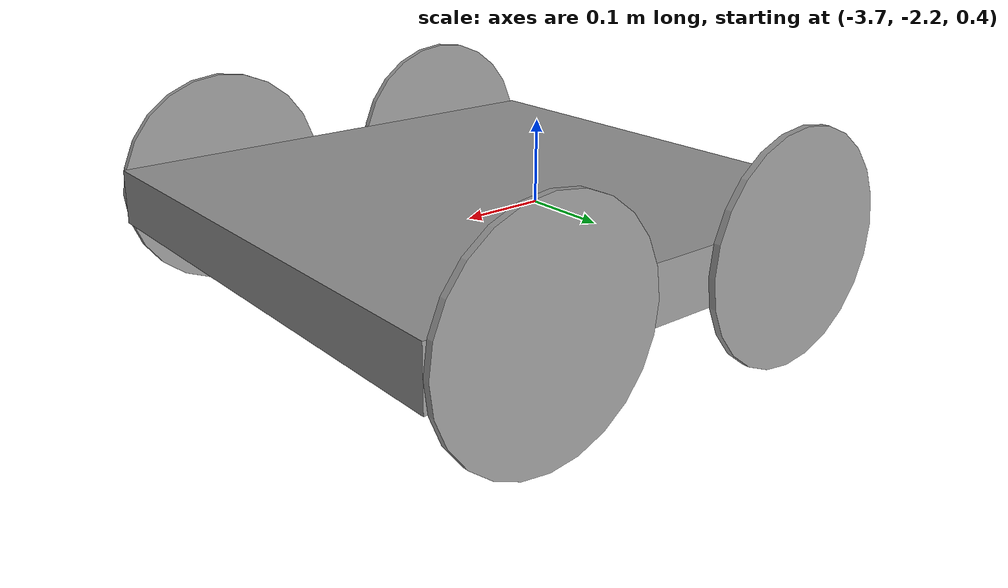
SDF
<!-- exoprt by create model in gazebo-->
<?xml version='1.0'?>
<sdf version='1.7'>
  <model name='robot'>
    <link name='body_link'>
      <inertial>
        <mass>1</mass>
        <inertia>
          <ixx>0.166667</ixx>
          <ixy>0</ixy>
          <ixz>0</ixz>
          <iyy>0.166667</iyy>
          <iyz>0</iyz>
          <izz>0.166667</izz>
        </inertia>
        <pose>0 0 0 0 -0 0</pose>
      </inertial>
      <pose>-3.4431 -1.98303 0.5 0 -0 0</pose>
      <gravity>1</gravity>
      <self_collide>0</self_collide>
      <kinematic>0</kinematic>
      <enable_wind>0</enable_wind>
      <visual name='visual'>
        <pose>0 0 0 0 -0 0</pose>
        <geometry>
          <box>
            <size>0.46 0.46 0.05</size>
          </box>
        </geometry>
        <material>
          <lighting>1</lighting>
          <script>
            <uri>file://media/materials/scripts/gazebo.material</uri>
            <name>Gazebo/Grey</name>
          </script>
          <shader type='pixel'>
            <normal_map>__default__</normal_map>
          </shader>
          <ambient>0.3 0.3 0.3 1</ambient>
          <diffuse>0.7 0.7 0.7 1</diffuse>
          <specular>0.01 0.01 0.01 1</specular>
          <emissive>0 0 0 1</emissive>
        </material>
        <transparency>0</transparency>
        <cast_shadows>1</cast_shadows>
      </visual>
      <collision name='collision'>
        <laser_retro>0</laser_retro>
        <max_contacts>10</max_contacts>
        <pose>0 0 0 0 -0 0</pose>
        <geometry>
          <box>
            <size>0.46 0.46 0.05</size>
          </box>
        </geometry>
        <surface>
          <friction>
            <ode>
              <mu>1</mu>
              <mu2>1</mu2>
              <fdir1>0 0 0</fdir1>
              <slip1>0</slip1>
              <slip2>0</slip2>
            </ode>
            <torsional>
              <coefficient>1</coefficient>
              <patch_radius>0</patch_radius>
              <surface_radius>0</surface_radius>
              <use_patch_radius>1</use_patch_radius>
              <ode>
                <slip>0</slip>
              </ode>
            </torsional>
          </friction>
          <bounce>
            <restitution_coefficient>0</restitution_coefficient>
            <threshold>1e+06</threshold>
          </bounce>
          <contact>
            <collide_without_contact>0</collide_without_contact>
            <collide_without_contact_bitmask>1</collide_without_contact_bitmask>
            <collide_bitmask>1</collide_bitmask>
            <ode>
              <soft_cfm>0</soft_cfm>
              <soft_erp>0.2</soft_erp>
              <kp>1e+13</kp>
              <kd>1</kd>
              <max_vel>0.01</max_vel>
              <min_depth>0</min_depth>
            </ode>
            <bullet>
              <split_impulse>1</split_impulse>
              <split_impulse_penetration_threshold>-0.01</split_impulse_penetration_threshold>
              <soft_cfm>0</soft_cfm>
              <soft_erp>0.2</soft_erp>
              <kp>1e+13</kp>
              <kd>1</kd>
            </bullet>
          </contact>
        </surface>
      </collision>
    </link>
    <link name='wheel2_link'>
      <inertial>
        <mass>1</mass>
        <inertia>
          <ixx>0.145833</ixx>
          <ixy>0</ixy>
          <ixz>0</ixz>
          <iyy>0.145833</iyy>
          <iyz>0</iyz>
          <izz>0.125</izz>
        </inertia>
        <pose>0 0 0 0 -0 0</pose>
      </inertial>
      <pose>-3.5731 -2.21604 0.5 1.5707 -0 0</pose>
      <gravity>1</gravity>
      <self_collide>0</self_collide>
      <kinematic>0</kinematic>
      <enable_wind>0</enable_wind>
      <visual name='visual'>
        <pose>0 0 0 0 -0 0</pose>
        <geometry>
          <cylinder>
            <radius>0.1</radius>
            <length>0.006</length>
          </cylinder>
        </geometry>
        <material>
          <lighting>1</lighting>
          <script>
            <uri>file://media/materials/scripts/gazebo.material</uri>
            <name>Gazebo/Grey</name>
          </script>
          <shader type='pixel'>
            <normal_map>__default__</normal_map>
          </shader>
          <ambient>0.3 0.3 0.3 1</ambient>
          <diffuse>0.7 0.7 0.7 1</diffuse>
          <specular>0.01 0.01 0.01 1</specular>
          <emissive>0 0 0 1</emissive>
        </material>
        <transparency>0</transparency>
        <cast_shadows>1</cast_shadows>
      </visual>
      <collision name='collision'>
        <laser_retro>0</laser_retro>
        <max_contacts>10</max_contacts>
        <pose>0 0 0 0 -0 0</pose>
        <geometry>
          <cylinder>
            <radius>0.1</radius>
            <length>0.006</length>
          </cylinder>
        </geometry>
        <surface>
          <friction>
            <ode>
              <mu>1</mu>
              <mu2>1</mu2>
              <fdir1>0 0 0</fdir1>
              <slip1>0</slip1>
              <slip2>0</slip2>
            </ode>
            <torsional>
              <coefficient>1</coefficient>
              <patch_radius>0</patch_radius>
              <surface_radius>0</surface_radius>
              <use_patch_radius>1</use_patch_radius>
              <ode>
                <slip>0</slip>
              </ode>
            </torsional>
          </friction>
          <bounce>
            <restitution_coefficient>0</restitution_coefficient>
            <threshold>1e+06</threshold>
          </bounce>
          <contact>
            <collide_without_contact>0</collide_without_contact>
            <collide_without_contact_bitmask>1</collide_without_contact_bitmask>
            <collide_bitmask>1</collide_bitmask>
            <ode>
              <soft_cfm>0</soft_cfm>
              <soft_erp>0.2</soft_erp>
              <kp>1e+13</kp>
              <kd>1</kd>
              <max_vel>0.01</max_vel>
              <min_depth>0</min_depth>
            </ode>
            <bullet>
              <split_impulse>1</split_impulse>
              <split_impulse_penetration_threshold>-0.01</split_impulse_penetration_threshold>
              <soft_cfm>0</soft_cfm>
              <soft_erp>0.2</soft_erp>
              <kp>1e+13</kp>
              <kd>1</kd>
            </bullet>
          </contact>
        </surface>
      </collision>
    </link>
    <link name='wheel1_link'>
      <inertial>
        <mass>1</mass>
        <inertia>
          <ixx>0.145833</ixx>
          <ixy>0</ixy>
          <ixz>0</ixz>
          <iyy>0.145833</iyy>
          <iyz>0</iyz>
          <izz>0.125</izz>
        </inertia>
        <pose>0 0 0 0 -0 0</pose>
      </inertial>
      <pose>-3.5731 -1.75002 0.5 1.5707 -0 0</pose>
      <gravity>1</gravity>
      <self_collide>0</self_collide>
      <kinematic>0</kinematic>
      <enable_wind>0</enable_wind>
      <visual name='visual'>
        <pose>0 0 0 0 -0 0</pose>
        <geometry>
          <cylinder>
            <radius>0.1</radius>
            <length>0.006</length>
          </cylinder>
        </geometry>
        <material>
          <lighting>1</lighting>
          <script>
            <uri>file://media/materials/scripts/gazebo.material</uri>
            <name>Gazebo/Grey</name>
          </script>
          <shader type='pixel'>
            <normal_map>__default__</normal_map>
          </shader>
          <ambient>0.3 0.3 0.3 1</ambient>
          <diffuse>0.7 0.7 0.7 1</diffuse>
          <specular>0.01 0.01 0.01 1</specular>
          <emissive>0 0 0 1</emissive>
        </material>
        <transparency>0</transparency>
        <cast_shadows>1</cast_shadows>
      </visual>
      <collision name='collision'>
        <laser_retro>0</laser_retro>
        <max_contacts>10</max_contacts>
        <pose>0 0 0 0 -0 0</pose>
        <geometry>
          <cylinder>
            <radius>0.1</radius>
            <length>0.006</length>
          </cylinder>
        </geometry>
        <surface>
          <friction>
            <ode>
              <mu>1</mu>
              <mu2>1</mu2>
              <fdir1>0 0 0</fdir1>
              <slip1>0</slip1>
              <slip2>0</slip2>
            </ode>
            <torsional>
              <coefficient>1</coefficient>
              <patch_radius>0</patch_radius>
              <surface_radius>0</surface_radius>
              <use_patch_radius>1</use_patch_radius>
              <ode>
                <slip>0</slip>
              </ode>
            </torsional>
          </friction>
          <bounce>
            <restitution_coefficient>0</restitution_coefficient>
            <threshold>1e+06</threshold>
          </bounce>
          <contact>
            <collide_without_contact>0</collide_without_contact>
            <collide_without_contact_bitmask>1</collide_without_contact_bitmask>
            <collide_bitmask>1</collide_bitmask>
            <ode>
              <soft_cfm>0</soft_cfm>
              <soft_erp>0.2</soft_erp>
              <kp>1e+13</kp>
              <kd>1</kd>
              <max_vel>0.01</max_vel>
              <min_depth>0</min_depth>
            </ode>
            <bullet>
              <split_impulse>1</split_impulse>
              <split_impulse_penetration_threshold>-0.01</split_impulse_penetration_threshold>
              <soft_cfm>0</soft_cfm>
              <soft_erp>0.2</soft_erp>
              <kp>1e+13</kp>
              <kd>1</kd>
            </bullet>
          </contact>
        </surface>
      </collision>
    </link>
    <link name='wheel3_link'>
      <inertial>
        <mass>1</mass>
        <inertia>
          <ixx>0.145833</ixx>
          <ixy>0</ixy>
          <ixz>0</ixz>
          <iyy>0.145833</iyy>
          <iyz>0</iyz>
          <izz>0.125</izz>
        </inertia>
        <pose>0 0 0 0 -0 0</pose>
      </inertial>
      <pose>-3.3131 -1.75002 0.5 1.5707 -0 0</pose>
      <gravity>1</gravity>
      <self_collide>0</self_collide>
      <kinematic>0</kinematic>
      <enable_wind>0</enable_wind>
      <visual name='visual'>
        <pose>0 0 0 0 -0 0</pose>
        <geometry>
          <cylinder>
            <radius>0.1</radius>
            <length>0.006</length>
          </cylinder>
        </geometry>
        <material>
          <lighting>1</lighting>
          <script>
            <uri>file://media/materials/scripts/gazebo.material</uri>
            <name>Gazebo/Grey</name>
          </script>
          <shader type='pixel'>
            <normal_map>__default__</normal_map>
          </shader>
          <ambient>0.3 0.3 0.3 1</ambient>
          <diffuse>0.7 0.7 0.7 1</diffuse>
          <specular>0.01 0.01 0.01 1</specular>
          <emissive>0 0 0 1</emissive>
        </material>
        <transparency>0</transparency>
        <cast_shadows>1</cast_shadows>
      </visual>
      <collision name='collision'>
        <laser_retro>0</laser_retro>
        <max_contacts>10</max_contacts>
        <pose>0 0 0 0 -0 0</pose>
        <geometry>
          <cylinder>
            <radius>0.1</radius>
            <length>0.006</length>
          </cylinder>
        </geometry>
        <surface>
          <friction>
            <ode>
              <mu>1</mu>
              <mu2>1</mu2>
              <fdir1>0 0 0</fdir1>
              <slip1>0</slip1>
              <slip2>0</slip2>
            </ode>
            <torsional>
              <coefficient>1</coefficient>
              <patch_radius>0</patch_radius>
              <surface_radius>0</surface_radius>
              <use_patch_radius>1</use_patch_radius>
              <ode>
                <slip>0</slip>
              </ode>
            </torsional>
          </friction>
          <bounce>
            <restitution_coefficient>0</restitution_coefficient>
            <threshold>1e+06</threshold>
          </bounce>
          <contact>
            <collide_without_contact>0</collide_without_contact>
            <collide_without_contact_bitmask>1</collide_without_contact_bitmask>
            <collide_bitmask>1</collide_bitmask>
            <ode>
              <soft_cfm>0</soft_cfm>
              <soft_erp>0.2</soft_erp>
              <kp>1e+13</kp>
              <kd>1</kd>
              <max_vel>0.01</max_vel>
              <min_depth>0</min_depth>
            </ode>
            <bullet>
              <split_impulse>1</split_impulse>
              <split_impulse_penetration_threshold>-0.01</split_impulse_penetration_threshold>
              <soft_cfm>0</soft_cfm>
              <soft_erp>0.2</soft_erp>
              <kp>1e+13</kp>
              <kd>1</kd>
            </bullet>
          </contact>
        </surface>
      </collision>
    </link>
    <link name='wheel4_link'>
      <inertial>
        <mass>1</mass>
        <inertia>
          <ixx>0.145833</ixx>
          <ixy>0</ixy>
          <ixz>0</ixz>
          <iyy>0.145833</iyy>
          <iyz>0</iyz>
          <izz>0.125</izz>
        </inertia>
        <pose>0 0 0 0 -0 0</pose>
      </inertial>
      <pose>-3.3131 -2.21604 0.5 1.5707 -0 0</pose>
      <gravity>1</gravity>
      <self_collide>0</self_collide>
      <kinematic>0</kinematic>
      <enable_wind>0</enable_wind>
      <visual name='visual'>
        <pose>0 0 0 0 -0 0</pose>
        <geometry>
          <cylinder>
            <radius>0.1</radius>
            <length>0.006</length>
          </cylinder>
        </geometry>
        <material>
          <lighting>1</lighting>
          <script>
            <uri>file://media/materials/scripts/gazebo.material</uri>
            <name>Gazebo/Grey</name>
          </script>
          <shader type='pixel'>
            <normal_map>__default__</normal_map>
          </shader>
          <ambient>0.3 0.3 0.3 1</ambient>
          <diffuse>0.7 0.7 0.7 1</diffuse>
          <specular>0.01 0.01 0.01 1</specular>
          <emissive>0 0 0 1</emissive>
        </material>
        <transparency>0</transparency>
        <cast_shadows>1</cast_shadows>
      </visual>
      <collision name='collision'>
        <laser_retro>0</laser_retro>
        <max_contacts>10</max_contacts>
        <pose>0 0 0 0 -0 0</pose>
        <geometry>
          <cylinder>
            <radius>0.1</radius>
            <length>0.006</length>
          </cylinder>
        </geometry>
        <surface>
          <friction>
            <ode>
              <mu>1</mu>
              <mu2>1</mu2>
              <fdir1>0 0 0</fdir1>
              <slip1>0</slip1>
              <slip2>0</slip2>
            </ode>
            <torsional>
              <coefficient>1</coefficient>
              <patch_radius>0</patch_radius>
              <surface_radius>0</surface_radius>
              <use_patch_radius>1</use_patch_radius>
              <ode>
                <slip>0</slip>
              </ode>
            </torsional>
          </friction>
          <bounce>
            <restitution_coefficient>0</restitution_coefficient>
            <threshold>1e+06</threshold>
          </bounce>
          <contact>
            <collide_without_contact>0</collide_without_contact>
            <collide_without_contact_bitmask>1</collide_without_contact_bitmask>
            <collide_bitmask>1</collide_bitmask>
            <ode>
              <soft_cfm>0</soft_cfm>
              <soft_erp>0.2</soft_erp>
              <kp>1e+13</kp>
              <kd>1</kd>
              <max_vel>0.01</max_vel>
              <min_depth>0</min_depth>
            </ode>
            <bullet>
              <split_impulse>1</split_impulse>
              <split_impulse_penetration_threshold>-0.01</split_impulse_penetration_threshold>
              <soft_cfm>0</soft_cfm>
              <soft_erp>0.2</soft_erp>
              <kp>1e+13</kp>
              <kd>1</kd>
            </bullet>
          </contact>
        </surface>
      </collision>
    </link>
    <joint name='wheel3_joint' type='revolute'>
      <parent>body_link</parent>
      <child>wheel3_link</child>
      <pose>0 0 0 0 -0 0</pose>
      <axis>
        <xyz>0 0 1</xyz>
        <limit>
          <lower>-1.79769e+308</lower>
          <upper>1.79769e+308</upper>
          <effort>-1</effort>
          <velocity>-1</velocity>
        </limit>
        <dynamics>
          <spring_reference>0</spring_reference>
          <spring_stiffness>0</spring_stiffness>
          <damping>0</damping>
        </dynamics>
      </axis>
      <physics>
        <ode>
          <limit>
            <cfm>0</cfm>
            <erp>0.2</erp>
          </limit>
          <suspension>
            <cfm>0</cfm>
            <erp>0.2</erp>
          </suspension>
        </ode>
      </physics>
    </joint>
    <joint name='wheel4_joint' type='revolute'>
      <parent>body_link</parent>
      <child>wheel4_link</child>
      <pose>0 0 0 0 -0 0</pose>
      <axis>
        <xyz>0 0 1</xyz>
        <limit>
          <lower>-1.79769e+308</lower>
          <upper>1.79769e+308</upper>
          <effort>-1</effort>
          <velocity>-1</velocity>
        </limit>
        <dynamics>
          <spring_reference>0</spring_reference>
          <spring_stiffness>0</spring_stiffness>
          <damping>0</damping>
        </dynamics>
      </axis>
      <physics>
        <ode>
          <limit>
            <cfm>0</cfm>
            <erp>0.2</erp>
          </limit>
          <suspension>
            <cfm>0</cfm>
            <erp>0.2</erp>
          </suspension>
        </ode>
      </physics>
    </joint>
    <joint name='wheel1_joint' type='revolute'>
      <parent>body_link</parent>
      <child>wheel1_link</child>
      <pose>0 0 0 0 -0 0</pose>
      <axis>
        <xyz>0 0 1</xyz>
        <limit>
          <lower>-1.79769e+308</lower>
          <upper>1.79769e+308</upper>
          <effort>-1</effort>
          <velocity>-1</velocity>
        </limit>
        <dynamics>
          <spring_reference>0</spring_reference>
          <spring_stiffness>0</spring_stiffness>
          <damping>0</damping>
        </dynamics>
      </axis>
      <physics>
        <ode>
          <limit>
            <cfm>0</cfm>
            <erp>0.2</erp>
          </limit>
          <suspension>
            <cfm>0</cfm>
            <erp>0.2</erp>
          </suspension>
        </ode>
      </physics>
    </joint>
    <joint name='wheel2_joint' type='revolute'>
      <parent>body_link</parent>
      <child>wheel2_link</child>
      <pose>0 0 0 0 -0 0</pose>
      <axis>
        <xyz>0 0 1</xyz>
        <limit>
          <lower>-1.79769e+308</lower>
          <upper>1.79769e+308</upper>
          <effort>-1</effort>
          <velocity>-1</velocity>
        </limit>
        <dynamics>
          <spring_reference>0</spring_reference>
          <spring_stiffness>0</spring_stiffness>
          <damping>0</damping>
        </dynamics>
      </axis>
      <physics>
        <ode>
          <limit>
            <cfm>0</cfm>
            <erp>0.2</erp>
          </limit>
          <suspension>
            <cfm>0</cfm>
            <erp>0.2</erp>
          </suspension>
        </ode>
      </physics>
    </joint>
    <static>0</static>
    <allow_auto_disable>1</allow_auto_disable>
    <plugin name='skid_steer_drive_cotroller' filename='libgazebo_ros_skid_steer_drive.so'/>
  </model>
</sdf>
